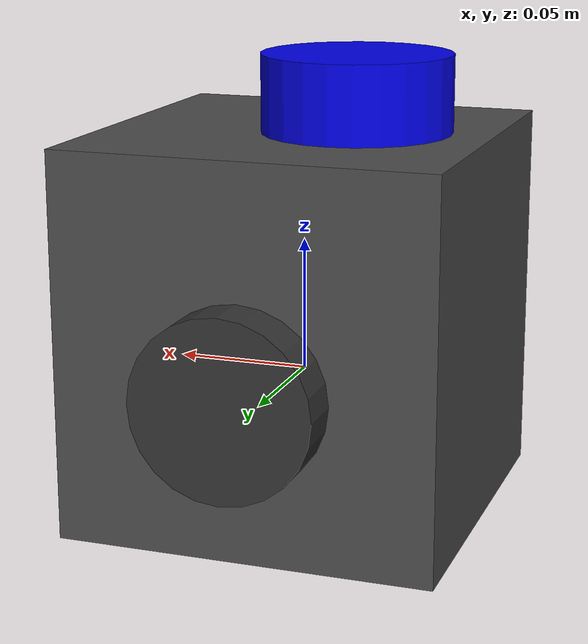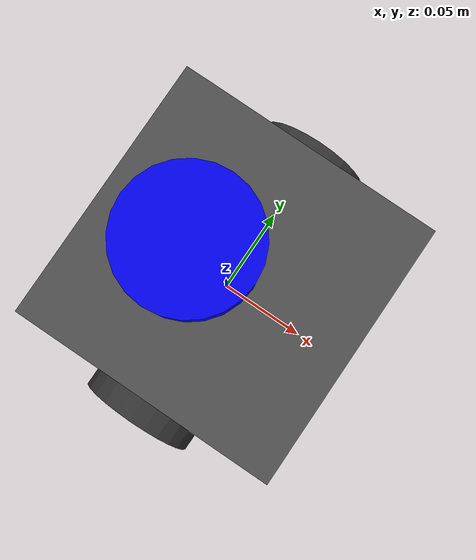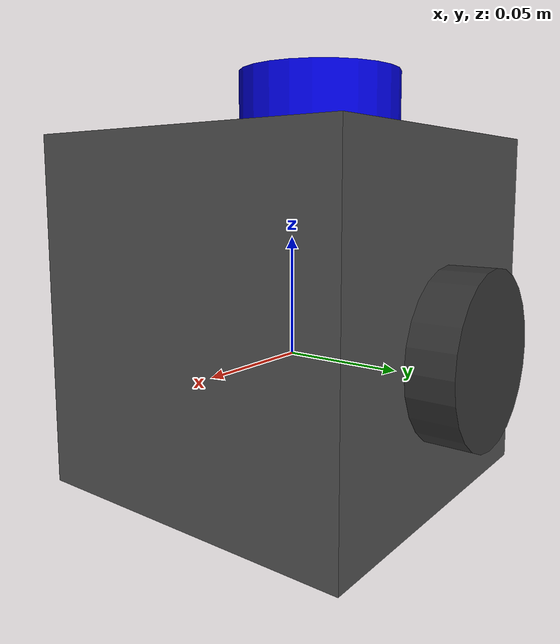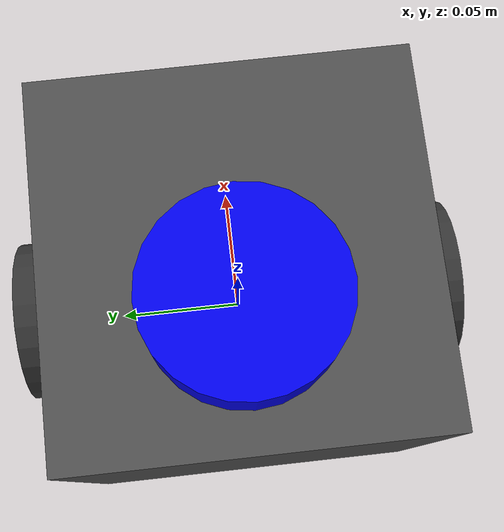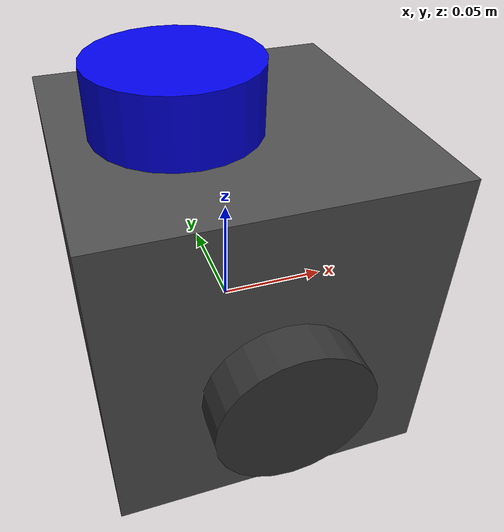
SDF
<?xml version="1.0" ?>
<sdf version="1.9">
  <model name="turtlebot3_burger">
    <pose>0 0 0.01 0 0 0</pose>

    <link name="base_footprint"/>

    <link name="base_link">
      <pose relative_to="base_footprint">0 0 0.010 0 0 0</pose>
      <inertial>
        <mass>1.0</mass>
        <inertia>
          <ixx>0.001</ixx><ixy>0</ixy><ixz>0</ixz>
          <iyy>0.001</iyy><iyz>0</iyz><izz>0.001</izz>
        </inertia>
      </inertial>
      <visual name="base_visual">
        <geometry>
          <box><size>0.14 0.14 0.143</size></box>
        </geometry>
        <material>
          <ambient>0.2 0.2 0.2 1</ambient>
          <diffuse>0.3 0.3 0.3 1</diffuse>
        </material>
      </visual>
      <collision name="base_collision">
        <geometry>
          <box><size>0.14 0.14 0.143</size></box>
        </geometry>
      </collision>
    </link>

    <joint name="base_joint" type="fixed">
      <parent>base_footprint</parent>
      <child>base_link</child>
    </joint>

    <!-- LiDAR cylinder -->
    <link name="lidar_link">
      <pose relative_to="base_link">-0.02 0 0.08 0 0 0</pose>
      <inertial>
        <mass>0.1</mass>
        <inertia>
          <ixx>0.0001</ixx><ixy>0</ixy><ixz>0</ixz>
          <iyy>0.0001</iyy><iyz>0</iyz><izz>0.0001</izz>
        </inertia>
      </inertial>
      <visual name="lidar_visual">
        <geometry>
          <cylinder><radius>0.035</radius><length>0.04</length></cylinder>
        </geometry>
        <material>
          <ambient>0.0 0.0 0.8 1</ambient>
          <diffuse>0.0 0.0 0.9 1</diffuse>
        </material>
      </visual>
    </link>

    <joint name="lidar_joint" type="fixed">
      <parent>base_link</parent>
      <child>lidar_link</child>
    </joint>

    <!-- Left wheel -->
    <link name="wheel_left_link">
      <pose relative_to="base_link">0 0.08 -0.01 -1.5708 0 0</pose>
      <inertial>
        <mass>0.1</mass>
        <inertia>
          <ixx>0.0001</ixx><ixy>0</ixy><ixz>0</ixz>
          <iyy>0.0001</iyy><iyz>0</iyz><izz>0.0001</izz>
        </inertia>
      </inertial>
      <visual name="wheel_left_visual">
        <geometry>
          <cylinder><radius>0.033</radius><length>0.018</length></cylinder>
        </geometry>
        <material>
          <ambient>0.1 0.1 0.1 1</ambient>
          <diffuse>0.2 0.2 0.2 1</diffuse>
        </material>
      </visual>
      <collision name="wheel_left_collision">
        <geometry>
          <cylinder><radius>0.033</radius><length>0.018</length></cylinder>
        </geometry>
        <surface>
          <friction><ode><mu>1.0</mu><mu2>1.0</mu2></ode></friction>
        </surface>
      </collision>
    </link>

    <joint name="wheel_left_joint" type="revolute">
      <parent>base_link</parent>
      <child>wheel_left_link</child>
      <axis><xyz>0 0 1</xyz></axis>
    </joint>

    <!-- Right wheel -->
    <link name="wheel_right_link">
      <pose relative_to="base_link">0 -0.08 -0.01 -1.5708 0 0</pose>
      <inertial>
        <mass>0.1</mass>
        <inertia>
          <ixx>0.0001</ixx><ixy>0</ixy><ixz>0</ixz>
          <iyy>0.0001</iyy><iyz>0</iyz><izz>0.0001</izz>
        </inertia>
      </inertial>
      <visual name="wheel_right_visual">
        <geometry>
          <cylinder><radius>0.033</radius><length>0.018</length></cylinder>
        </geometry>
        <material>
          <ambient>0.1 0.1 0.1 1</ambient>
          <diffuse>0.2 0.2 0.2 1</diffuse>
        </material>
      </visual>
      <collision name="wheel_right_collision">
        <geometry>
          <cylinder><radius>0.033</radius><length>0.018</length></cylinder>
        </geometry>
        <surface>
          <friction><ode><mu>1.0</mu><mu2>1.0</mu2></ode></friction>
        </surface>
      </collision>
    </link>

    <joint name="wheel_right_joint" type="revolute">
      <parent>base_link</parent>
      <child>wheel_right_link</child>
      <axis><xyz>0 0 1</xyz></axis>
    </joint>

    <!-- Caster ball -->
    <link name="caster_link">
      <pose relative_to="base_link">-0.05 0 -0.01 0 0 0</pose>
      <inertial>
        <mass>0.05</mass>
        <inertia>
          <ixx>0.00001</ixx><ixy>0</ixy><ixz>0</ixz>
          <iyy>0.00001</iyy><iyz>0</iyz><izz>0.00001</izz>
        </inertia>
      </inertial>
      <visual name="caster_visual">
        <geometry>
          <sphere><radius>0.012</radius></sphere>
        </geometry>
      </visual>
      <collision name="caster_collision">
        <geometry>
          <sphere><radius>0.012</radius></sphere>
        </geometry>
        <surface>
          <friction><ode><mu>0.0</mu><mu2>0.0</mu2></ode></friction>
        </surface>
      </collision>
    </link>

    <joint name="caster_joint" type="fixed">
      <parent>base_link</parent>
      <child>caster_link</child>
    </joint>

    <!-- Diff Drive Plugin -->
    <plugin filename="ignition-gazebo-diff-drive-system" name="ignition::gazebo::systems::DiffDrive">
      <left_joint>wheel_left_joint</left_joint>
      <right_joint>wheel_right_joint</right_joint>
      <wheel_separation>0.160</wheel_separation>
      <wheel_radius>0.033</wheel_radius>
      <max_linear_acceleration>1.0</max_linear_acceleration>
      <topic>cmd_vel</topic>
      <odom_topic>odom</odom_topic>
      <frame_id>odom</frame_id>
      <child_frame_id>base_footprint</child_frame_id>
      <odom_publish_frequency>30</odom_publish_frequency>
    </plugin>
  </model>
</sdf>
